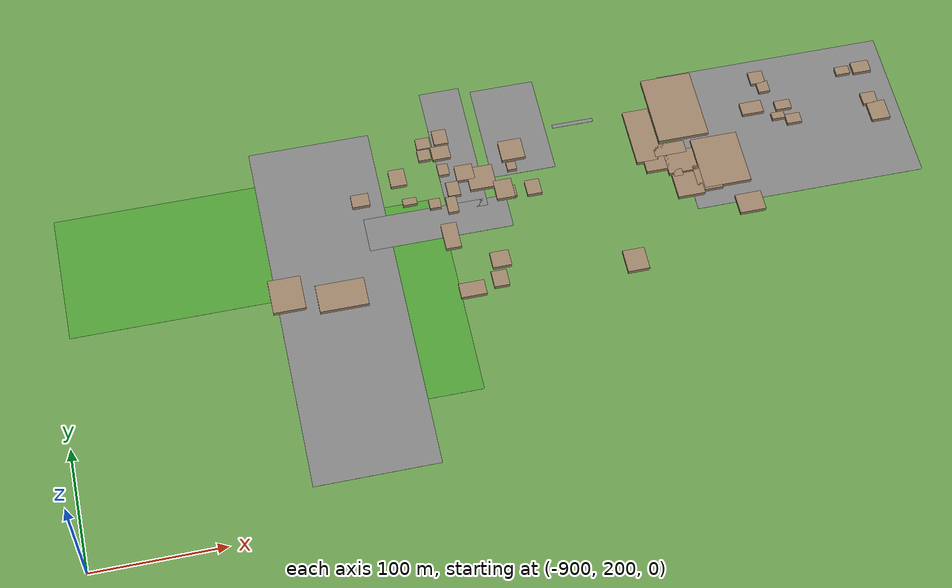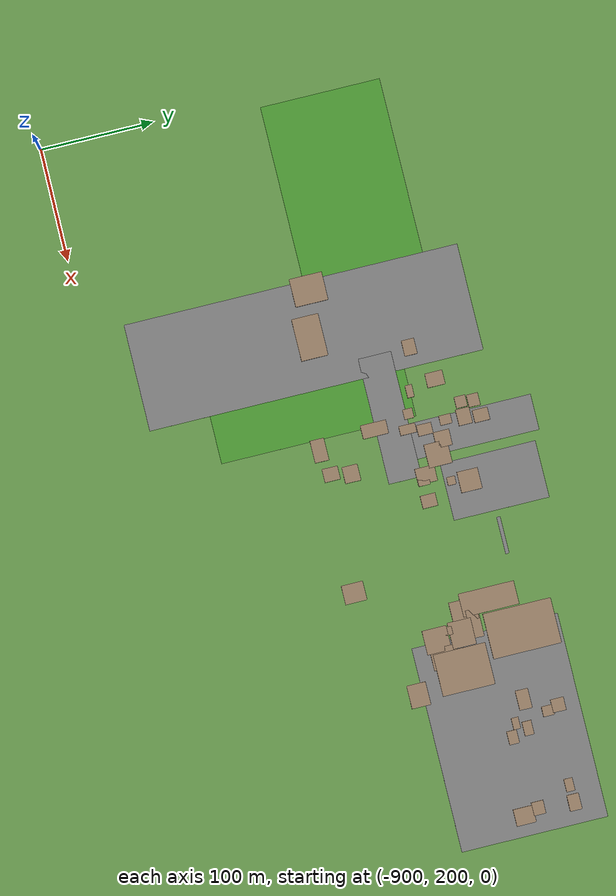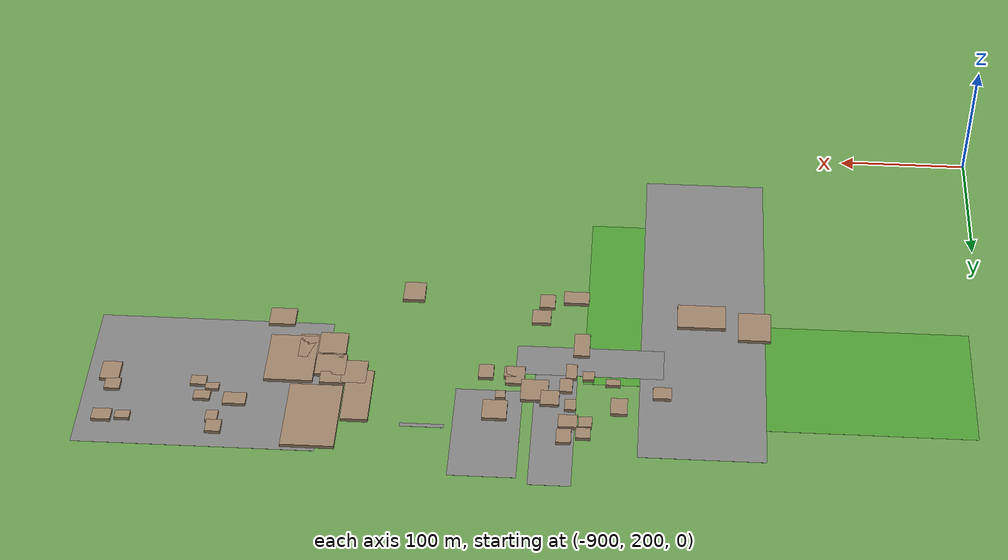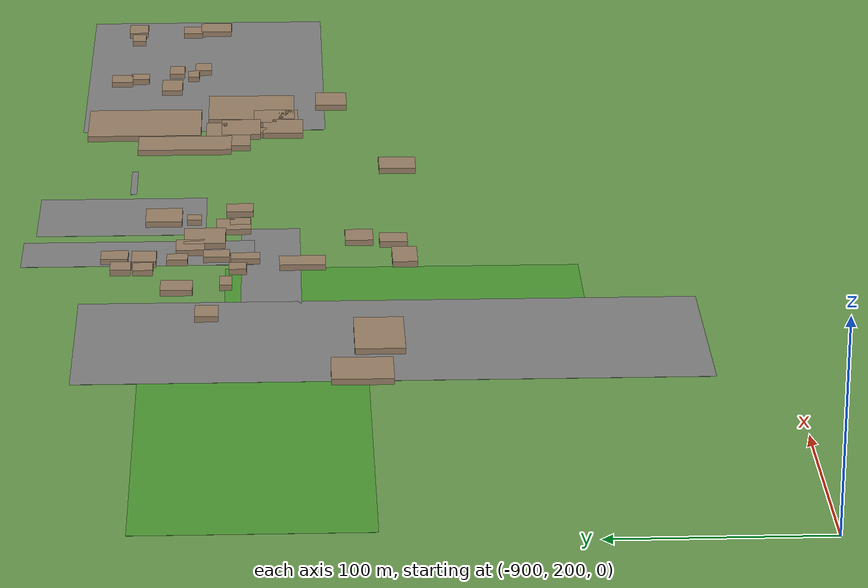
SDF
<sdf version="1.9">
 <world name="kimje_farmland">
  <model name="ground_plane">
   <static>true</static>
   <link name="link">
    <collision name="collision">
     <geometry><plane><normal>0 0 1</normal><size>2000 2000</size></plane></geometry>
    </collision>
    <visual name="visual">
     <geometry><plane><normal>0 0 1</normal><size>2000 2000</size></plane></geometry>
     <material><ambient>0.4 0.6 0.3 1</ambient><diffuse>0.4 0.6 0.3 1</diffuse></material>
    </visual>
   </link>
  </model>
  <model name="osm_81">
   <static>true</static>
   <pose>-314.82 472.62 0.040 0 0 0</pose>
   <link name="link">
    <collision name="collision"><geometry><box><size>179.62 129.05 0.080</size></box></geometry></collision>
    <visual name="visual">
     <geometry><box><size>179.62 129.05 0.080</size></box></geometry>
     <material><ambient>0.5 0.5 0.5 1</ambient><diffuse>0.5 0.5 0.5 1</diffuse></material>
    </visual>
   </link>
  </model>
  <model name="osm_165">
   <static>true</static>
   <pose>-480.77 507.68 0.040 0 0 0</pose>
   <link name="link">
    <collision name="collision"><geometry><box><size>32.52 3.24 0.080</size></box></geometry></collision>
    <visual name="visual">
     <geometry><box><size>32.52 3.24 0.080</size></box></geometry>
     <material><ambient>0.5 0.5 0.5 1</ambient><diffuse>0.5 0.5 0.5 1</diffuse></material>
    </visual>
   </link>
  </model>
  <model name="osm_220">
   <static>true</static>
   <pose>-585.85 514.28 1.500 0 0 0</pose>
   <link name="link">
    <collision name="collision"><geometry><box><size>11.06 13.40 3.000</size></box></geometry></collision>
    <visual name="visual">
     <geometry><box><size>11.06 13.40 3.000</size></box></geometry>
     <material><ambient>0.6 0.5 0.4 1</ambient><diffuse>0.6 0.5 0.4 1</diffuse></material>
    </visual>
   </link>
  </model>
  <model name="osm_221">
   <static>true</static>
   <pose>-600.02 510.91 1.500 0 0 0</pose>
   <link name="link">
    <collision name="collision"><geometry><box><size>10.99 10.06 3.000</size></box></geometry></collision>
    <visual name="visual">
     <geometry><box><size>10.99 10.06 3.000</size></box></geometry>
     <material><ambient>0.6 0.5 0.4 1</ambient><diffuse>0.6 0.5 0.4 1</diffuse></material>
    </visual>
   </link>
  </model>
  <model name="osm_222">
   <static>true</static>
   <pose>-601.19 500.03 1.500 0 0 0</pose>
   <link name="link">
    <collision name="collision"><geometry><box><size>10.00 9.89 3.000</size></box></geometry></collision>
    <visual name="visual">
     <geometry><box><size>10.00 9.89 3.000</size></box></geometry>
     <material><ambient>0.6 0.5 0.4 1</ambient><diffuse>0.6 0.5 0.4 1</diffuse></material>
    </visual>
   </link>
  </model>
  <model name="osm_223">
   <static>true</static>
   <pose>-588.19 499.75 1.500 0 0 0</pose>
   <link name="link">
    <collision name="collision"><geometry><box><size>14.19 12.03 3.000</size></box></geometry></collision>
    <visual name="visual">
     <geometry><box><size>14.19 12.03 3.000</size></box></geometry>
     <material><ambient>0.6 0.5 0.4 1</ambient><diffuse>0.6 0.5 0.4 1</diffuse></material>
    </visual>
   </link>
  </model>
  <model name="osm_224">
   <static>true</static>
   <pose>-533.58 491.12 1.500 0 0 0</pose>
   <link name="link">
    <collision name="collision"><geometry><box><size>18.40 18.33 3.000</size></box></geometry></collision>
    <visual name="visual">
     <geometry><box><size>18.40 18.33 3.000</size></box></geometry>
     <material><ambient>0.6 0.5 0.4 1</ambient><diffuse>0.6 0.5 0.4 1</diffuse></material>
    </visual>
   </link>
  </model>
  <model name="osm_227">
   <static>true</static>
   <pose>-399.07 504.31 1.500 0 0 0</pose>
   <link name="link">
    <collision name="collision"><geometry><box><size>39.92 60.12 3.000</size></box></geometry></collision>
    <visual name="visual">
     <geometry><box><size>39.92 60.12 3.000</size></box></geometry>
     <material><ambient>0.6 0.5 0.4 1</ambient><diffuse>0.6 0.5 0.4 1</diffuse></material>
    </visual>
   </link>
  </model>
  <model name="osm_228">
   <static>true</static>
   <pose>-430.43 482.46 1.500 0 0 0</pose>
   <link name="link">
    <collision name="collision"><geometry><box><size>20.59 49.16 3.000</size></box></geometry></collision>
    <visual name="visual">
     <geometry><box><size>20.59 49.16 3.000</size></box></geometry>
     <material><ambient>0.6 0.5 0.4 1</ambient><diffuse>0.6 0.5 0.4 1</diffuse></material>
    </visual>
   </link>
  </model>
  <model name="osm_229">
   <static>true</static>
   <pose>-573.83 477.32 1.500 0 0 0</pose>
   <link name="link">
    <collision name="collision"><geometry><box><size>14.01 14.03 3.000</size></box></geometry></collision>
    <visual name="visual">
     <geometry><box><size>14.01 14.03 3.000</size></box></geometry>
     <material><ambient>0.6 0.5 0.4 1</ambient><diffuse>0.6 0.5 0.4 1</diffuse></material>
    </visual>
   </link>
  </model>
  <model name="osm_230">
   <static>true</static>
   <pose>-562.08 470.24 1.500 0 0 0</pose>
   <link name="link">
    <collision name="collision"><geometry><box><size>20.58 20.57 3.000</size></box></geometry></collision>
    <visual name="visual">
     <geometry><box><size>20.58 20.57 3.000</size></box></geometry>
     <material><ambient>0.6 0.5 0.4 1</ambient><diffuse>0.6 0.5 0.4 1</diffuse></material>
    </visual>
   </link>
  </model>
  <model name="osm_231">
   <static>true</static>
   <pose>-536.82 475.87 1.500 0 0 0</pose>
   <link name="link">
    <collision name="collision"><geometry><box><size>7.26 7.26 3.000</size></box></geometry></collision>
    <visual name="visual">
     <geometry><box><size>7.26 7.26 3.000</size></box></geometry>
     <material><ambient>0.6 0.5 0.4 1</ambient><diffuse>0.6 0.5 0.4 1</diffuse></material>
    </visual>
   </link>
  </model>
  <model name="osm_232">
   <static>true</static>
   <pose>-546.89 455.96 1.500 0 0 0</pose>
   <link name="link">
    <collision name="collision"><geometry><box><size>14.16 17.28 3.000</size></box></geometry></collision>
    <visual name="visual">
     <geometry><box><size>14.16 17.28 3.000</size></box></geometry>
     <material><ambient>0.6 0.5 0.4 1</ambient><diffuse>0.6 0.5 0.4 1</diffuse></material>
    </visual>
   </link>
  </model>
  <model name="osm_233">
   <static>true</static>
   <pose>-589.37 483.46 1.500 0 0 0</pose>
   <link name="link">
    <collision name="collision"><geometry><box><size>8.40 10.23 3.000</size></box></geometry></collision>
    <visual name="visual">
     <geometry><box><size>8.40 10.23 3.000</size></box></geometry>
     <material><ambient>0.6 0.5 0.4 1</ambient><diffuse>0.6 0.5 0.4 1</diffuse></material>
    </visual>
   </link>
  </model>
  <model name="osm_234">
   <static>true</static>
   <pose>-585.34 464.18 1.500 0 0 0</pose>
   <link name="link">
    <collision name="collision"><geometry><box><size>9.67 12.86 3.000</size></box></geometry></collision>
    <visual name="visual">
     <geometry><box><size>9.67 12.86 3.000</size></box></geometry>
     <material><ambient>0.6 0.5 0.4 1</ambient><diffuse>0.6 0.5 0.4 1</diffuse></material>
    </visual>
   </link>
  </model>
  <model name="osm_235">
   <static>true</static>
   <pose>-625.55 483.17 1.500 0 0 0</pose>
   <link name="link">
    <collision name="collision"><geometry><box><size>12.54 15.53 3.000</size></box></geometry></collision>
    <visual name="visual">
     <geometry><box><size>12.54 15.53 3.000</size></box></geometry>
     <material><ambient>0.6 0.5 0.4 1</ambient><diffuse>0.6 0.5 0.4 1</diffuse></material>
    </visual>
   </link>
  </model>
  <model name="osm_236">
   <static>true</static>
   <pose>-620.37 459.46 1.500 0 0 0</pose>
   <link name="link">
    <collision name="collision"><geometry><box><size>10.88 6.03 3.000</size></box></geometry></collision>
    <visual name="visual">
     <geometry><box><size>10.88 6.03 3.000</size></box></geometry>
     <material><ambient>0.6 0.5 0.4 1</ambient><diffuse>0.6 0.5 0.4 1</diffuse></material>
    </visual>
   </link>
  </model>
  <model name="osm_237">
   <static>true</static>
   <pose>-657.41 468.25 1.500 0 0 0</pose>
   <link name="link">
    <collision name="collision"><geometry><box><size>13.71 11.22 3.000</size></box></geometry></collision>
    <visual name="visual">
     <geometry><box><size>13.71 11.22 3.000</size></box></geometry>
     <material><ambient>0.6 0.5 0.4 1</ambient><diffuse>0.6 0.5 0.4 1</diffuse></material>
    </visual>
   </link>
  </model>
  <model name="osm_238">
   <static>true</static>
   <pose>-726.58 395.93 1.500 0 0 0</pose>
   <link name="link">
    <collision name="collision"><geometry><box><size>24.85 28.87 3.000</size></box></geometry></collision>
    <visual name="visual">
     <geometry><box><size>24.85 28.87 3.000</size></box></geometry>
     <material><ambient>0.6 0.5 0.4 1</ambient><diffuse>0.6 0.5 0.4 1</diffuse></material>
    </visual>
   </link>
  </model>
  <model name="osm_239">
   <static>true</static>
   <pose>-686.09 387.04 1.500 0 0 0</pose>
   <link name="link">
    <collision name="collision"><geometry><box><size>37.15 23.66 3.000</size></box></geometry></collision>
    <visual name="visual">
     <geometry><box><size>37.15 23.66 3.000</size></box></geometry>
     <material><ambient>0.6 0.5 0.4 1</ambient><diffuse>0.6 0.5 0.4 1</diffuse></material>
    </visual>
   </link>
  </model>
  <model name="osm_240">
   <static>true</static>
   <pose>-588.88 449.98 1.500 0 0 0</pose>
   <link name="link">
    <collision name="collision"><geometry><box><size>8.18 14.28 3.000</size></box></geometry></collision>
    <visual name="visual">
     <geometry><box><size>8.18 14.28 3.000</size></box></geometry>
     <material><ambient>0.6 0.5 0.4 1</ambient><diffuse>0.6 0.5 0.4 1</diffuse></material>
    </visual>
   </link>
  </model>
  <model name="osm_241">
   <static>true</static>
   <pose>-601.78 453.67 1.500 0 0 0</pose>
   <link name="link">
    <collision name="collision"><geometry><box><size>8.71 8.46 3.000</size></box></geometry></collision>
    <visual name="visual">
     <geometry><box><size>8.71 8.46 3.000</size></box></geometry>
     <material><ambient>0.6 0.5 0.4 1</ambient><diffuse>0.6 0.5 0.4 1</diffuse></material>
    </visual>
   </link>
  </model>
  <model name="osm_242">
   <static>true</static>
   <pose>-595.54 422.11 1.500 0 0 0</pose>
   <link name="link">
    <collision name="collision"><geometry><box><size>11.99 22.63 3.000</size></box></geometry></collision>
    <visual name="visual">
     <geometry><box><size>11.99 22.63 3.000</size></box></geometry>
     <material><ambient>0.6 0.5 0.4 1</ambient><diffuse>0.6 0.5 0.4 1</diffuse></material>
    </visual>
   </link>
  </model>
  <model name="osm_243">
   <static>true</static>
   <pose>-563.09 393.66 1.500 0 0 0</pose>
   <link name="link">
    <collision name="collision"><geometry><box><size>14.51 13.83 3.000</size></box></geometry></collision>
    <visual name="visual">
     <geometry><box><size>14.51 13.83 3.000</size></box></geometry>
     <material><ambient>0.6 0.5 0.4 1</ambient><diffuse>0.6 0.5 0.4 1</diffuse></material>
    </visual>
   </link>
  </model>
  <model name="osm_244">
   <static>true</static>
   <pose>-566.91 376.73 1.500 0 0 0</pose>
   <link name="link">
    <collision name="collision"><geometry><box><size>11.83 13.84 3.000</size></box></geometry></collision>
    <visual name="visual">
     <geometry><box><size>11.83 13.84 3.000</size></box></geometry>
     <material><ambient>0.6 0.5 0.4 1</ambient><diffuse>0.6 0.5 0.4 1</diffuse></material>
    </visual>
   </link>
  </model>
  <model name="osm_245">
   <static>true</static>
   <pose>-589.14 371.81 1.500 0 0 0</pose>
   <link name="link">
    <collision name="collision"><geometry><box><size>19.68 12.36 3.000</size></box></geometry></collision>
    <visual name="visual">
     <geometry><box><size>19.68 12.36 3.000</size></box></geometry>
     <material><ambient>0.6 0.5 0.4 1</ambient><diffuse>0.6 0.5 0.4 1</diffuse></material>
    </visual>
   </link>
  </model>
  <model name="osm_246">
   <static>true</static>
   <pose>-542.91 452.74 1.500 0 0 0</pose>
   <link name="link">
    <collision name="collision"><geometry><box><size>9.14 10.24 3.000</size></box></geometry></collision>
    <visual name="visual">
     <geometry><box><size>9.14 10.24 3.000</size></box></geometry>
     <material><ambient>0.6 0.5 0.4 1</ambient><diffuse>0.6 0.5 0.4 1</diffuse></material>
    </visual>
   </link>
  </model>
  <model name="osm_247">
   <static>true</static>
   <pose>-524.64 453.03 1.500 0 0 0</pose>
   <link name="link">
    <collision name="collision"><geometry><box><size>11.32 13.34 3.000</size></box></geometry></collision>
    <visual name="visual">
     <geometry><box><size>11.32 13.34 3.000</size></box></geometry>
     <material><ambient>0.6 0.5 0.4 1</ambient><diffuse>0.6 0.5 0.4 1</diffuse></material>
    </visual>
   </link>
  </model>
  <model name="osm_248">
   <static>true</static>
   <pose>-463.03 371.51 1.500 0 0 0</pose>
   <link name="link">
    <collision name="collision"><geometry><box><size>16.79 19.05 3.000</size></box></geometry></collision>
    <visual name="visual">
     <geometry><box><size>16.79 19.05 3.000</size></box></geometry>
     <material><ambient>0.6 0.5 0.4 1</ambient><diffuse>0.6 0.5 0.4 1</diffuse></material>
    </visual>
   </link>
  </model>
  <model name="osm_250">
   <static>true</static>
   <pose>-425.75 459.35 1.500 0 0 0</pose>
   <link name="link">
    <collision name="collision"><geometry><box><size>18.98 22.56 3.000</size></box></geometry></collision>
    <visual name="visual">
     <geometry><box><size>18.98 22.56 3.000</size></box></geometry>
     <material><ambient>0.6 0.5 0.4 1</ambient><diffuse>0.6 0.5 0.4 1</diffuse></material>
    </visual>
   </link>
  </model>
  <model name="osm_251">
   <static>true</static>
   <pose>-412.92 465.87 1.500 0 0 0</pose>
   <link name="link">
    <collision name="collision"><geometry><box><size>24.86 11.07 3.000</size></box></geometry></collision>
    <visual name="visual">
     <geometry><box><size>24.86 11.07 3.000</size></box></geometry>
     <material><ambient>0.6 0.5 0.4 1</ambient><diffuse>0.6 0.5 0.4 1</diffuse></material>
    </visual>
   </link>
  </model>
  <model name="osm_252">
   <static>true</static>
   <pose>-407.19 452.98 1.500 0 0 0</pose>
   <link name="link">
    <collision name="collision"><geometry><box><size>23.08 20.59 3.000</size></box></geometry></collision>
    <visual name="visual">
     <geometry><box><size>23.08 20.59 3.000</size></box></geometry>
     <material><ambient>0.6 0.5 0.4 1</ambient><diffuse>0.6 0.5 0.4 1</diffuse></material>
    </visual>
   </link>
  </model>
  <model name="osm_253">
   <static>true</static>
   <pose>-411.98 442.55 1.500 0 0 0</pose>
   <link name="link">
    <collision name="collision"><geometry><box><size>7.25 6.18 3.000</size></box></geometry></collision>
    <visual name="visual">
     <geometry><box><size>7.25 6.18 3.000</size></box></geometry>
     <material><ambient>0.6 0.5 0.4 1</ambient><diffuse>0.6 0.5 0.4 1</diffuse></material>
    </visual>
   </link>
  </model>
  <model name="osm_254">
   <static>true</static>
   <pose>-376.65 447.45 1.500 0 0 0</pose>
   <link name="link">
    <collision name="collision"><geometry><box><size>36.73 46.08 3.000</size></box></geometry></collision>
    <visual name="visual">
     <geometry><box><size>36.73 46.08 3.000</size></box></geometry>
     <material><ambient>0.6 0.5 0.4 1</ambient><diffuse>0.6 0.5 0.4 1</diffuse></material>
    </visual>
   </link>
  </model>
  <model name="osm_255">
   <static>true</static>
   <pose>-390.54 434.31 1.500 0 0 0</pose>
   <link name="link">
    <collision name="collision"><geometry><box><size>18.82 23.53 3.000</size></box></geometry></collision>
    <visual name="visual">
     <geometry><box><size>18.82 23.53 3.000</size></box></geometry>
     <material><ambient>0.6 0.5 0.4 1</ambient><diffuse>0.6 0.5 0.4 1</diffuse></material>
    </visual>
   </link>
  </model>
  <model name="osm_256">
   <static>true</static>
   <pose>-406.54 430.69 1.500 0 0 0</pose>
   <link name="link">
    <collision name="collision"><geometry><box><size>21.24 21.36 3.000</size></box></geometry></collision>
    <visual name="visual">
     <geometry><box><size>21.24 21.36 3.000</size></box></geometry>
     <material><ambient>0.6 0.5 0.4 1</ambient><diffuse>0.6 0.5 0.4 1</diffuse></material>
    </visual>
   </link>
  </model>
  <model name="osm_277">
   <static>true</static>
   <pose>-687.54 381.86 0.040 0 0 0</pose>
   <link name="link">
    <collision name="collision"><geometry><box><size>94.36 295.96 0.080</size></box></geometry></collision>
    <visual name="visual">
     <geometry><box><size>94.36 295.96 0.080</size></box></geometry>
     <material><ambient>0.5 0.5 0.5 1</ambient><diffuse>0.5 0.5 0.5 1</diffuse></material>
    </visual>
   </link>
  </model>
  <model name="osm_278">
   <static>true</static>
   <pose>-602.34 437.49 0.040 0 0 0</pose>
   <link name="link">
    <collision name="collision"><geometry><box><size>111.36 29.05 0.080</size></box></geometry></collision>
    <visual name="visual">
     <geometry><box><size>111.36 29.05 0.080</size></box></geometry>
     <material><ambient>0.5 0.5 0.5 1</ambient><diffuse>0.5 0.5 0.5 1</diffuse></material>
    </visual>
   </link>
  </model>
  <model name="osm_279">
   <static>true</static>
   <pose>-577.60 502.89 0.040 0 0 0</pose>
   <link name="link">
    <collision name="collision"><geometry><box><size>31.56 114.36 0.080</size></box></geometry></collision>
    <visual name="visual">
     <geometry><box><size>31.56 114.36 0.080</size></box></geometry>
     <material><ambient>0.5 0.5 0.5 1</ambient><diffuse>0.5 0.5 0.5 1</diffuse></material>
    </visual>
   </link>
  </model>
  <model name="osm_280">
   <static>true</static>
   <pose>-528.26 512.14 0.040 0 0 0</pose>
   <link name="link">
    <collision name="collision"><geometry><box><size>50.25 84.53 0.080</size></box></geometry></collision>
    <visual name="visual">
     <geometry><box><size>50.25 84.53 0.080</size></box></geometry>
     <material><ambient>0.5 0.5 0.5 1</ambient><diffuse>0.5 0.5 0.5 1</diffuse></material>
    </visual>
   </link>
  </model>
  <model name="osm_286">
   <static>true</static>
   <pose>-649.51 373.50 0.025 0 0 0</pose>
   <link name="link">
    <collision name="collision"><geometry><box><size>102.60 172.51 0.050</size></box></geometry></collision>
    <visual name="visual">
     <geometry><box><size>102.60 172.51 0.050</size></box></geometry>
     <material><ambient>0.3 0.6 0.2 1</ambient><diffuse>0.3 0.6 0.2 1</diffuse></material>
    </visual>
   </link>
  </model>
  <model name="osm_287">
   <static>true</static>
   <pose>-810.99 446.14 0.025 0 0 0</pose>
   <link name="link">
    <collision name="collision"><geometry><box><size>158.35 106.07 0.050</size></box></geometry></collision>
    <visual name="visual">
     <geometry><box><size>158.35 106.07 0.050</size></box></geometry>
     <material><ambient>0.3 0.6 0.2 1</ambient><diffuse>0.3 0.6 0.2 1</diffuse></material>
    </visual>
   </link>
  </model>
  <model name="osm_320">
   <static>true</static>
   <pose>-328.00 518.74 1.500 0 0 0</pose>
   <link name="link">
    <collision name="collision"><geometry><box><size>11.49 11.50 3.000</size></box></geometry></collision>
    <visual name="visual">
     <geometry><box><size>11.49 11.50 3.000</size></box></geometry>
     <material><ambient>0.6 0.5 0.4 1</ambient><diffuse>0.6 0.5 0.4 1</diffuse></material>
    </visual>
   </link>
  </model>
  <model name="osm_321">
   <static>true</static>
   <pose>-339.63 490.97 1.500 0 0 0</pose>
   <link name="link">
    <collision name="collision"><geometry><box><size>17.20 11.12 3.000</size></box></geometry></collision>
    <visual name="visual">
     <geometry><box><size>17.20 11.12 3.000</size></box></geometry>
     <material><ambient>0.6 0.5 0.4 1</ambient><diffuse>0.6 0.5 0.4 1</diffuse></material>
    </visual>
   </link>
  </model>
  <model name="osm_326">
   <static>true</static>
   <pose>-325.25 508.93 1.500 0 0 0</pose>
   <link name="link">
    <collision name="collision"><geometry><box><size>8.97 9.89 3.000</size></box></geometry></collision>
    <visual name="visual">
     <geometry><box><size>8.97 9.89 3.000</size></box></geometry>
     <material><ambient>0.6 0.5 0.4 1</ambient><diffuse>0.6 0.5 0.4 1</diffuse></material>
    </visual>
   </link>
  </model>
  <model name="osm_330">
   <static>true</static>
   <pose>-259.17 511.40 1.500 0 0 0</pose>
   <link name="link">
    <collision name="collision"><geometry><box><size>11.22 7.39 3.000</size></box></geometry></collision>
    <visual name="visual">
     <geometry><box><size>11.22 7.39 3.000</size></box></geometry>
     <material><ambient>0.6 0.5 0.4 1</ambient><diffuse>0.6 0.5 0.4 1</diffuse></material>
    </visual>
   </link>
  </model>
  <model name="osm_331">
   <static>true</static>
   <pose>-243.76 511.96 1.500 0 0 0</pose>
   <link name="link">
    <collision name="collision"><geometry><box><size>14.22 10.46 3.000</size></box></geometry></collision>
    <visual name="visual">
     <geometry><box><size>14.22 10.46 3.000</size></box></geometry>
     <material><ambient>0.6 0.5 0.4 1</ambient><diffuse>0.6 0.5 0.4 1</diffuse></material>
    </visual>
   </link>
  </model>
  <model name="osm_357">
   <static>true</static>
   <pose>-246.24 480.96 1.500 0 0 0</pose>
   <link name="link">
    <collision name="collision"><geometry><box><size>11.65 10.54 3.000</size></box></geometry></collision>
    <visual name="visual">
     <geometry><box><size>11.65 10.54 3.000</size></box></geometry>
     <material><ambient>0.6 0.5 0.4 1</ambient><diffuse>0.6 0.5 0.4 1</diffuse></material>
    </visual>
   </link>
  </model>
  <model name="osm_358">
   <static>true</static>
   <pose>-242.53 467.82 1.500 0 0 0</pose>
   <link name="link">
    <collision name="collision"><geometry><box><size>14.69 17.24 3.000</size></box></geometry></collision>
    <visual name="visual">
     <geometry><box><size>14.69 17.24 3.000</size></box></geometry>
     <material><ambient>0.6 0.5 0.4 1</ambient><diffuse>0.6 0.5 0.4 1</diffuse></material>
    </visual>
   </link>
  </model>
  <model name="osm_359">
   <static>true</static>
   <pose>-314.77 488.69 1.500 0 0 0</pose>
   <link name="link">
    <collision name="collision"><geometry><box><size>12.41 8.17 3.000</size></box></geometry></collision>
    <visual name="visual">
     <geometry><box><size>12.41 8.17 3.000</size></box></geometry>
     <material><ambient>0.6 0.5 0.4 1</ambient><diffuse>0.6 0.5 0.4 1</diffuse></material>
    </visual>
   </link>
  </model>
  <model name="osm_360">
   <static>true</static>
   <pose>-321.23 479.54 1.500 0 0 0</pose>
   <link name="link">
    <collision name="collision"><geometry><box><size>10.10 6.11 3.000</size></box></geometry></collision>
    <visual name="visual">
     <geometry><box><size>10.10 6.11 3.000</size></box></geometry>
     <material><ambient>0.6 0.5 0.4 1</ambient><diffuse>0.6 0.5 0.4 1</diffuse></material>
    </visual>
   </link>
  </model>
  <model name="osm_361">
   <static>true</static>
   <pose>-310.14 474.26 1.500 0 0 0</pose>
   <link name="link">
    <collision name="collision"><geometry><box><size>11.79 8.79 3.000</size></box></geometry></collision>
    <visual name="visual">
     <geometry><box><size>11.79 8.79 3.000</size></box></geometry>
     <material><ambient>0.6 0.5 0.4 1</ambient><diffuse>0.6 0.5 0.4 1</diffuse></material>
    </visual>
   </link>
  </model>
  <model name="osm_362">
   <static>true</static>
   <pose>-364.38 404.36 1.500 0 0 0</pose>
   <link name="link">
    <collision name="collision"><geometry><box><size>20.26 16.75 3.000</size></box></geometry></collision>
    <visual name="visual">
     <geometry><box><size>20.26 16.75 3.000</size></box></geometry>
     <material><ambient>0.6 0.5 0.4 1</ambient><diffuse>0.6 0.5 0.4 1</diffuse></material>
    </visual>
   </link>
  </model>
 </world>
</sdf>
